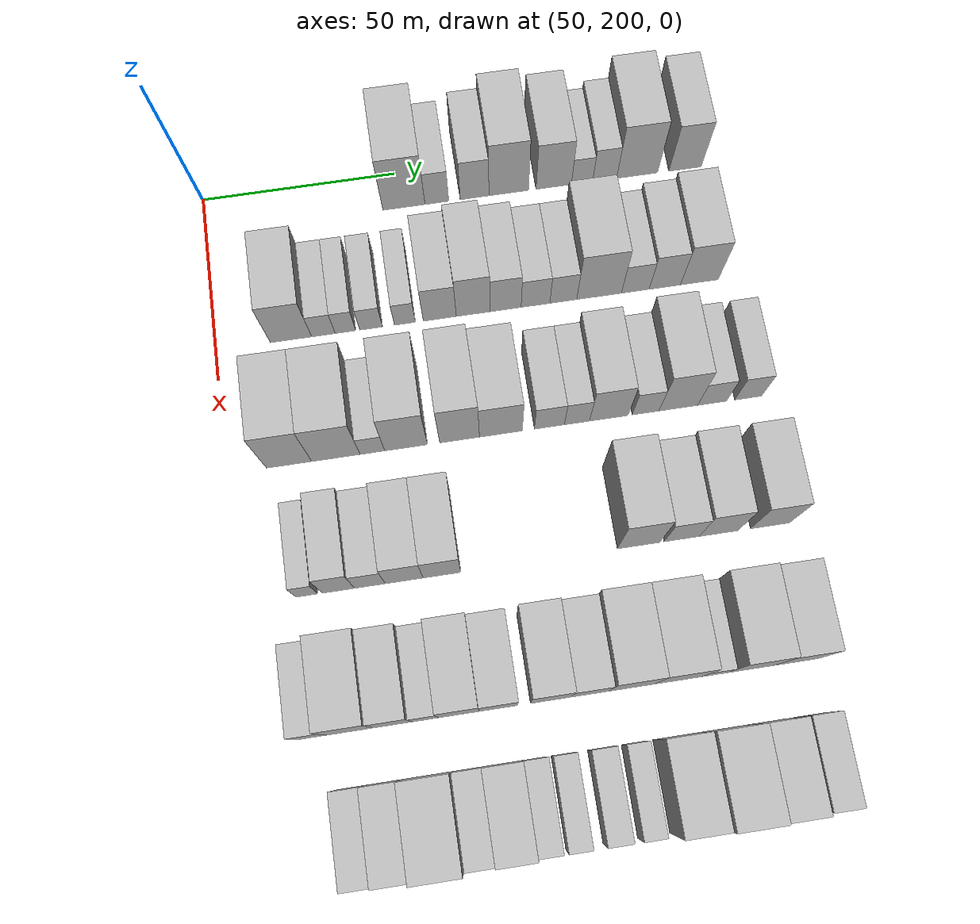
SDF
<sdf version="1.6">
 <world name="default">
  <model name="building_85">
   <static>1</static>
   <pose>50.0000 251.2242 0 0.000000 0.000000 0.000000</pose>
   <link name="link">
    <pose>0 0 12.00 0 0 0</pose>
    <collision name="collision"><geometry><box><size>20.0000 10.9344 24.0000</size></box></geometry></collision>
    <visual name="visual">
     <cast_shadows>0</cast_shadows>
     <geometry><box><size>20.0000 10.9344 24.0000</size></box></geometry>
     <material>
      <script>
       <uri>model://HANNAS_wall/materials/scripts</uri>
       <uri>model://HANNAS_wall/materials/textures</uri>
       <name>vrc/HANNAS_wall</name>
      </script>
     </material>
    </visual>
   </link>
  </model>
  <model name="building_86">
   <static>1</static>
   <pose>50.0000 259.7882 0 0.000000 0.000000 0.000000</pose>
   <link name="link">
    <pose>0 0 7.50 0 0 0</pose>
    <collision name="collision"><geometry><box><size>20.0000 6.1938 15.0000</size></box></geometry></collision>
    <visual name="visual">
     <cast_shadows>0</cast_shadows>
     <geometry><box><size>20.0000 6.1938 15.0000</size></box></geometry>
     <material>
      <script>
       <uri>model://HANNAS_wall/materials/scripts</uri>
       <uri>model://HANNAS_wall/materials/textures</uri>
       <name>vrc/HANNAS_wall</name>
      </script>
     </material>
    </visual>
   </link>
  </model>
  <model name="building_87">
   <static>1</static>
   <pose>50.0000 269.6459 0 0.000000 0.000000 0.000000</pose>
   <link name="link">
    <pose>0 0 9.00 0 0 0</pose>
    <collision name="collision"><geometry><box><size>20.0000 7.5215 18.0000</size></box></geometry></collision>
    <visual name="visual">
     <cast_shadows>0</cast_shadows>
     <geometry><box><size>20.0000 7.5215 18.0000</size></box></geometry>
     <material>
      <script>
       <uri>model://HANNAS_wall/materials/scripts</uri>
       <uri>model://HANNAS_wall/materials/textures</uri>
       <name>vrc/HANNAS_wall</name>
      </script>
     </material>
    </visual>
   </link>
  </model>
  <model name="building_88">
   <static>1</static>
   <pose>50.0000 278.5712 0 0.000000 0.000000 0.000000</pose>
   <link name="link">
    <pose>0 0 12.00 0 0 0</pose>
    <collision name="collision"><geometry><box><size>20.0000 10.3290 24.0000</size></box></geometry></collision>
    <visual name="visual">
     <cast_shadows>0</cast_shadows>
     <geometry><box><size>20.0000 10.3290 24.0000</size></box></geometry>
     <material>
      <script>
       <uri>model://HANNAS_wall/materials/scripts</uri>
       <uri>model://HANNAS_wall/materials/textures</uri>
       <name>vrc/HANNAS_wall</name>
      </script>
     </material>
    </visual>
   </link>
  </model>
  <model name="building_89">
   <static>1</static>
   <pose>50.0000 290.3845 0 0.000000 0.000000 0.000000</pose>
   <link name="link">
    <pose>0 0 10.50 0 0 0</pose>
    <collision name="collision"><geometry><box><size>20.0000 9.2975 21.0000</size></box></geometry></collision>
    <visual name="visual">
     <cast_shadows>0</cast_shadows>
     <geometry><box><size>20.0000 9.2975 21.0000</size></box></geometry>
     <material>
      <script>
       <uri>model://HANNAS_wall/materials/scripts</uri>
       <uri>model://HANNAS_wall/materials/textures</uri>
       <name>vrc/HANNAS_wall</name>
      </script>
     </material>
    </visual>
   </link>
  </model>
  <model name="building_90">
   <static>1</static>
   <pose>50.0000 297.8246 0 0.000000 0.000000 0.000000</pose>
   <link name="link">
    <pose>0 0 6.00 0 0 0</pose>
    <collision name="collision"><geometry><box><size>20.0000 5.5828 12.0000</size></box></geometry></collision>
    <visual name="visual">
     <cast_shadows>0</cast_shadows>
     <geometry><box><size>20.0000 5.5828 12.0000</size></box></geometry>
     <material>
      <script>
       <uri>model://HANNAS_wall/materials/scripts</uri>
       <uri>model://HANNAS_wall/materials/textures</uri>
       <name>vrc/HANNAS_wall</name>
      </script>
     </material>
    </visual>
   </link>
  </model>
  <model name="building_91">
   <static>1</static>
   <pose>50.0000 303.7821 0 0.000000 0.000000 0.000000</pose>
   <link name="link">
    <pose>0 0 7.50 0 0 0</pose>
    <collision name="collision"><geometry><box><size>20.0000 6.3321 15.0000</size></box></geometry></collision>
    <visual name="visual">
     <cast_shadows>0</cast_shadows>
     <geometry><box><size>20.0000 6.3321 15.0000</size></box></geometry>
     <material>
      <script>
       <uri>model://HANNAS_wall/materials/scripts</uri>
       <uri>model://HANNAS_wall/materials/textures</uri>
       <name>vrc/HANNAS_wall</name>
      </script>
     </material>
    </visual>
   </link>
  </model>
  <model name="building_92">
   <static>1</static>
   <pose>50.0000 312.3733 0 0.000000 0.000000 0.000000</pose>
   <link name="link">
    <pose>0 0 12.00 0 0 0</pose>
    <collision name="collision"><geometry><box><size>20.0000 10.8503 24.0000</size></box></geometry></collision>
    <visual name="visual">
     <cast_shadows>0</cast_shadows>
     <geometry><box><size>20.0000 10.8503 24.0000</size></box></geometry>
     <material>
      <script>
       <uri>model://HANNAS_wall/materials/scripts</uri>
       <uri>model://HANNAS_wall/materials/textures</uri>
       <name>vrc/HANNAS_wall</name>
      </script>
     </material>
    </visual>
   </link>
  </model>
  <model name="building_93">
   <static>1</static>
   <pose>50.0000 325.0896 0 0.000000 0.000000 0.000000</pose>
   <link name="link">
    <pose>0 0 10.50 0 0 0</pose>
    <collision name="collision"><geometry><box><size>20.0000 8.5824 21.0000</size></box></geometry></collision>
    <visual name="visual">
     <cast_shadows>0</cast_shadows>
     <geometry><box><size>20.0000 8.5824 21.0000</size></box></geometry>
     <material>
      <script>
       <uri>model://HANNAS_wall/materials/scripts</uri>
       <uri>model://HANNAS_wall/materials/textures</uri>
       <name>vrc/HANNAS_wall</name>
      </script>
     </material>
    </visual>
   </link>
  </model>
  <model name="building_201">
   <static>1</static>
   <pose>82.0000 218.8173 0 0.000000 0.000000 0.000000</pose>
   <link name="link">
    <pose>0 0 10.50 0 0 0</pose>
    <collision name="collision"><geometry><box><size>20.0000 10.3179 21.0000</size></box></geometry></collision>
    <visual name="visual">
     <cast_shadows>0</cast_shadows>
     <geometry><box><size>20.0000 10.3179 21.0000</size></box></geometry>
     <material>
      <script>
       <uri>model://HANNAS_wall/materials/scripts</uri>
       <uri>model://HANNAS_wall/materials/textures</uri>
       <name>vrc/HANNAS_wall</name>
      </script>
     </material>
    </visual>
   </link>
  </model>
  <model name="building_202">
   <static>1</static>
   <pose>82.0000 226.9212 0 0.000000 0.000000 0.000000</pose>
   <link name="link">
    <pose>0 0 6.00 0 0 0</pose>
    <collision name="collision"><geometry><box><size>20.0000 5.8899 12.0000</size></box></geometry></collision>
    <visual name="visual">
     <cast_shadows>0</cast_shadows>
     <geometry><box><size>20.0000 5.8899 12.0000</size></box></geometry>
     <material>
      <script>
       <uri>model://HANNAS_wall/materials/scripts</uri>
       <uri>model://HANNAS_wall/materials/textures</uri>
       <name>vrc/HANNAS_wall</name>
      </script>
     </material>
    </visual>
   </link>
  </model>
  <model name="building_203">
   <static>1</static>
   <pose>82.0000 232.4464 0 0.000000 0.000000 0.000000</pose>
   <link name="link">
    <pose>0 0 6.00 0 0 0</pose>
    <collision name="collision"><geometry><box><size>20.0000 5.1606 12.0000</size></box></geometry></collision>
    <visual name="visual">
     <cast_shadows>0</cast_shadows>
     <geometry><box><size>20.0000 5.1606 12.0000</size></box></geometry>
     <material>
      <script>
       <uri>model://HANNAS_wall/materials/scripts</uri>
       <uri>model://HANNAS_wall/materials/textures</uri>
       <name>vrc/HANNAS_wall</name>
      </script>
     </material>
    </visual>
   </link>
  </model>
  <model name="building_204">
   <static>1</static>
   <pose>82.0000 238.8896 0 0.000000 0.000000 0.000000</pose>
   <link name="link">
    <pose>0 0 6.00 0 0 0</pose>
    <collision name="collision"><geometry><box><size>20.0000 5.7256 12.0000</size></box></geometry></collision>
    <visual name="visual">
     <cast_shadows>0</cast_shadows>
     <geometry><box><size>20.0000 5.7256 12.0000</size></box></geometry>
     <material>
      <script>
       <uri>model://HANNAS_wall/materials/scripts</uri>
       <uri>model://HANNAS_wall/materials/textures</uri>
       <name>vrc/HANNAS_wall</name>
      </script>
     </material>
    </visual>
   </link>
  </model>
  <model name="building_205">
   <static>1</static>
   <pose>82.0000 247.3961 0 0.000000 0.000000 0.000000</pose>
   <link name="link">
    <pose>0 0 6.00 0 0 0</pose>
    <collision name="collision"><geometry><box><size>20.0000 5.2874 12.0000</size></box></geometry></collision>
    <visual name="visual">
     <cast_shadows>0</cast_shadows>
     <geometry><box><size>20.0000 5.2874 12.0000</size></box></geometry>
     <material>
      <script>
       <uri>model://HANNAS_wall/materials/scripts</uri>
       <uri>model://HANNAS_wall/materials/textures</uri>
       <name>vrc/HANNAS_wall</name>
      </script>
     </material>
    </visual>
   </link>
  </model>
  <model name="building_206">
   <static>1</static>
   <pose>82.0000 256.2009 0 0.000000 0.000000 0.000000</pose>
   <link name="link">
    <pose>0 0 9.00 0 0 0</pose>
    <collision name="collision"><geometry><box><size>20.0000 8.3221 18.0000</size></box></geometry></collision>
    <visual name="visual">
     <cast_shadows>0</cast_shadows>
     <geometry><box><size>20.0000 8.3221 18.0000</size></box></geometry>
     <material>
      <script>
       <uri>model://HANNAS_wall/materials/scripts</uri>
       <uri>model://HANNAS_wall/materials/textures</uri>
       <name>vrc/HANNAS_wall</name>
      </script>
     </material>
    </visual>
   </link>
  </model>
  <model name="building_207">
   <static>1</static>
   <pose>82.0000 264.6581 0 0.000000 0.000000 0.000000</pose>
   <link name="link">
    <pose>0 0 10.50 0 0 0</pose>
    <collision name="collision"><geometry><box><size>20.0000 8.5924 21.0000</size></box></geometry></collision>
    <visual name="visual">
     <cast_shadows>0</cast_shadows>
     <geometry><box><size>20.0000 8.5924 21.0000</size></box></geometry>
     <material>
      <script>
       <uri>model://HANNAS_wall/materials/scripts</uri>
       <uri>model://HANNAS_wall/materials/textures</uri>
       <name>vrc/HANNAS_wall</name>
      </script>
     </material>
    </visual>
   </link>
  </model>
  <model name="building_208">
   <static>1</static>
   <pose>82.0000 272.8703 0 0.000000 0.000000 0.000000</pose>
   <link name="link">
    <pose>0 0 9.00 0 0 0</pose>
    <collision name="collision"><geometry><box><size>20.0000 7.8319 18.0000</size></box></geometry></collision>
    <visual name="visual">
     <cast_shadows>0</cast_shadows>
     <geometry><box><size>20.0000 7.8319 18.0000</size></box></geometry>
     <material>
      <script>
       <uri>model://HANNAS_wall/materials/scripts</uri>
       <uri>model://HANNAS_wall/materials/textures</uri>
       <name>vrc/HANNAS_wall</name>
      </script>
     </material>
    </visual>
   </link>
  </model>
  <model name="building_209">
   <static>1</static>
   <pose>82.0000 280.4461 0 0.000000 0.000000 0.000000</pose>
   <link name="link">
    <pose>0 0 7.50 0 0 0</pose>
    <collision name="collision"><geometry><box><size>20.0000 7.3196 15.0000</size></box></geometry></collision>
    <visual name="visual">
     <cast_shadows>0</cast_shadows>
     <geometry><box><size>20.0000 7.3196 15.0000</size></box></geometry>
     <material>
      <script>
       <uri>model://HANNAS_wall/materials/scripts</uri>
       <uri>model://HANNAS_wall/materials/textures</uri>
       <name>vrc/HANNAS_wall</name>
      </script>
     </material>
    </visual>
   </link>
  </model>
  <model name="building_210">
   <static>1</static>
   <pose>82.0000 287.5278 0 0.000000 0.000000 0.000000</pose>
   <link name="link">
    <pose>0 0 7.50 0 0 0</pose>
    <collision name="collision"><geometry><box><size>20.0000 6.8439 15.0000</size></box></geometry></collision>
    <visual name="visual">
     <cast_shadows>0</cast_shadows>
     <geometry><box><size>20.0000 6.8439 15.0000</size></box></geometry>
     <material>
      <script>
       <uri>model://HANNAS_wall/materials/scripts</uri>
       <uri>model://HANNAS_wall/materials/textures</uri>
       <name>vrc/HANNAS_wall</name>
      </script>
     </material>
    </visual>
   </link>
  </model>
  <model name="building_211">
   <static>1</static>
   <pose>82.0000 296.6586 0 0.000000 0.000000 0.000000</pose>
   <link name="link">
    <pose>0 0 12.00 0 0 0</pose>
    <collision name="collision"><geometry><box><size>20.0000 11.4178 24.0000</size></box></geometry></collision>
    <visual name="visual">
     <cast_shadows>0</cast_shadows>
     <geometry><box><size>20.0000 11.4178 24.0000</size></box></geometry>
     <material>
      <script>
       <uri>model://HANNAS_wall/materials/scripts</uri>
       <uri>model://HANNAS_wall/materials/textures</uri>
       <name>vrc/HANNAS_wall</name>
      </script>
     </material>
    </visual>
   </link>
  </model>
  <model name="building_212">
   <static>1</static>
   <pose>82.0000 305.9149 0 0.000000 0.000000 0.000000</pose>
   <link name="link">
    <pose>0 0 7.50 0 0 0</pose>
    <collision name="collision"><geometry><box><size>20.0000 7.0948 15.0000</size></box></geometry></collision>
    <visual name="visual">
     <cast_shadows>0</cast_shadows>
     <geometry><box><size>20.0000 7.0948 15.0000</size></box></geometry>
     <material>
      <script>
       <uri>model://HANNAS_wall/materials/scripts</uri>
       <uri>model://HANNAS_wall/materials/textures</uri>
       <name>vrc/HANNAS_wall</name>
      </script>
     </material>
    </visual>
   </link>
  </model>
  <model name="building_213">
   <static>1</static>
   <pose>82.0000 313.4951 0 0.000000 0.000000 0.000000</pose>
   <link name="link">
    <pose>0 0 9.00 0 0 0</pose>
    <collision name="collision"><geometry><box><size>20.0000 8.0655 18.0000</size></box></geometry></collision>
    <visual name="visual">
     <cast_shadows>0</cast_shadows>
     <geometry><box><size>20.0000 8.0655 18.0000</size></box></geometry>
     <material>
      <script>
       <uri>model://HANNAS_wall/materials/scripts</uri>
       <uri>model://HANNAS_wall/materials/textures</uri>
       <name>vrc/HANNAS_wall</name>
      </script>
     </material>
    </visual>
   </link>
  </model>
  <model name="building_214">
   <static>1</static>
   <pose>82.0000 322.3911 0 0.000000 0.000000 0.000000</pose>
   <link name="link">
    <pose>0 0 10.50 0 0 0</pose>
    <collision name="collision"><geometry><box><size>20.0000 9.7266 21.0000</size></box></geometry></collision>
    <visual name="visual">
     <cast_shadows>0</cast_shadows>
     <geometry><box><size>20.0000 9.7266 21.0000</size></box></geometry>
     <material>
      <script>
       <uri>model://HANNAS_wall/materials/scripts</uri>
       <uri>model://HANNAS_wall/materials/textures</uri>
       <name>vrc/HANNAS_wall</name>
      </script>
     </material>
    </visual>
   </link>
  </model>
  <model name="building_317">
   <static>1</static>
   <pose>114.0000 215.2118 0 0.000000 0.000000 0.000000</pose>
   <link name="link">
    <pose>0 0 12.00 0 0 0</pose>
    <collision name="collision"><geometry><box><size>20.0000 10.9580 24.0000</size></box></geometry></collision>
    <visual name="visual">
     <cast_shadows>0</cast_shadows>
     <geometry><box><size>20.0000 10.9580 24.0000</size></box></geometry>
     <material>
      <script>
       <uri>model://HANNAS_wall/materials/scripts</uri>
       <uri>model://HANNAS_wall/materials/textures</uri>
       <name>vrc/HANNAS_wall</name>
      </script>
     </material>
    </visual>
   </link>
  </model>
  <model name="building_318">
   <static>1</static>
   <pose>114.0000 226.5452 0 0.000000 0.000000 0.000000</pose>
   <link name="link">
    <pose>0 0 12.00 0 0 0</pose>
    <collision name="collision"><geometry><box><size>20.0000 11.7088 24.0000</size></box></geometry></collision>
    <visual name="visual">
     <cast_shadows>0</cast_shadows>
     <geometry><box><size>20.0000 11.7088 24.0000</size></box></geometry>
     <material>
      <script>
       <uri>model://HANNAS_wall/materials/scripts</uri>
       <uri>model://HANNAS_wall/materials/textures</uri>
       <name>vrc/HANNAS_wall</name>
      </script>
     </material>
    </visual>
   </link>
  </model>
  <model name="building_319">
   <static>1</static>
   <pose>114.0000 235.3949 0 0.000000 0.000000 0.000000</pose>
   <link name="link">
    <pose>0 0 6.00 0 0 0</pose>
    <collision name="collision"><geometry><box><size>20.0000 5.9906 12.0000</size></box></geometry></collision>
    <visual name="visual">
     <cast_shadows>0</cast_shadows>
     <geometry><box><size>20.0000 5.9906 12.0000</size></box></geometry>
     <material>
      <script>
       <uri>model://HANNAS_wall/materials/scripts</uri>
       <uri>model://HANNAS_wall/materials/textures</uri>
       <name>vrc/HANNAS_wall</name>
      </script>
     </material>
    </visual>
   </link>
  </model>
  <model name="building_320">
   <static>1</static>
   <pose>114.0000 243.6078 0 0.000000 0.000000 0.000000</pose>
   <link name="link">
    <pose>0 0 12.00 0 0 0</pose>
    <collision name="collision"><geometry><box><size>20.0000 10.4353 24.0000</size></box></geometry></collision>
    <visual name="visual">
     <cast_shadows>0</cast_shadows>
     <geometry><box><size>20.0000 10.4353 24.0000</size></box></geometry>
     <material>
      <script>
       <uri>model://HANNAS_wall/materials/scripts</uri>
       <uri>model://HANNAS_wall/materials/textures</uri>
       <name>vrc/HANNAS_wall</name>
      </script>
     </material>
    </visual>
   </link>
  </model>
  <model name="building_321">
   <static>1</static>
   <pose>114.0000 256.6834 0 0.000000 0.000000 0.000000</pose>
   <link name="link">
    <pose>0 0 12.00 0 0 0</pose>
    <collision name="collision"><geometry><box><size>20.0000 9.7159 24.0000</size></box></geometry></collision>
    <visual name="visual">
     <cast_shadows>0</cast_shadows>
     <geometry><box><size>20.0000 9.7159 24.0000</size></box></geometry>
     <material>
      <script>
       <uri>model://HANNAS_wall/materials/scripts</uri>
       <uri>model://HANNAS_wall/materials/textures</uri>
       <name>vrc/HANNAS_wall</name>
      </script>
     </material>
    </visual>
   </link>
  </model>
  <model name="building_322">
   <static>1</static>
   <pose>114.0000 266.7874 0 0.000000 0.000000 0.000000</pose>
   <link name="link">
    <pose>0 0 10.50 0 0 0</pose>
    <collision name="collision"><geometry><box><size>20.0000 10.4921 21.0000</size></box></geometry></collision>
    <visual name="visual">
     <cast_shadows>0</cast_shadows>
     <geometry><box><size>20.0000 10.4921 21.0000</size></box></geometry>
     <material>
      <script>
       <uri>model://HANNAS_wall/materials/scripts</uri>
       <uri>model://HANNAS_wall/materials/textures</uri>
       <name>vrc/HANNAS_wall</name>
      </script>
     </material>
    </visual>
   </link>
  </model>
  <model name="building_323">
   <static>1</static>
   <pose>114.0000 278.7101 0 0.000000 0.000000 0.000000</pose>
   <link name="link">
    <pose>0 0 7.50 0 0 0</pose>
    <collision name="collision"><geometry><box><size>20.0000 7.3532 15.0000</size></box></geometry></collision>
    <visual name="visual">
     <cast_shadows>0</cast_shadows>
     <geometry><box><size>20.0000 7.3532 15.0000</size></box></geometry>
     <material>
      <script>
       <uri>model://HANNAS_wall/materials/scripts</uri>
       <uri>model://HANNAS_wall/materials/textures</uri>
       <name>vrc/HANNAS_wall</name>
      </script>
     </material>
    </visual>
   </link>
  </model>
  <model name="building_324">
   <static>1</static>
   <pose>114.0000 285.4901 0 0.000000 0.000000 0.000000</pose>
   <link name="link">
    <pose>0 0 7.50 0 0 0</pose>
    <collision name="collision"><geometry><box><size>20.0000 6.2069 15.0000</size></box></geometry></collision>
    <visual name="visual">
     <cast_shadows>0</cast_shadows>
     <geometry><box><size>20.0000 6.2069 15.0000</size></box></geometry>
     <material>
      <script>
       <uri>model://HANNAS_wall/materials/scripts</uri>
       <uri>model://HANNAS_wall/materials/textures</uri>
       <name>vrc/HANNAS_wall</name>
      </script>
     </material>
    </visual>
   </link>
  </model>
  <model name="building_325">
   <static>1</static>
   <pose>114.0000 293.3940 0 0.000000 0.000000 0.000000</pose>
   <link name="link">
    <pose>0 0 10.50 0 0 0</pose>
    <collision name="collision"><geometry><box><size>20.0000 9.6009 21.0000</size></box></geometry></collision>
    <visual name="visual">
     <cast_shadows>0</cast_shadows>
     <geometry><box><size>20.0000 9.6009 21.0000</size></box></geometry>
     <material>
      <script>
       <uri>model://HANNAS_wall/materials/scripts</uri>
       <uri>model://HANNAS_wall/materials/textures</uri>
       <name>vrc/HANNAS_wall</name>
      </script>
     </material>
    </visual>
   </link>
  </model>
  <model name="building_326">
   <static>1</static>
   <pose>114.0000 302.5099 0 0.000000 0.000000 0.000000</pose>
   <link name="link">
    <pose>0 0 7.50 0 0 0</pose>
    <collision name="collision"><geometry><box><size>20.0000 6.6310 15.0000</size></box></geometry></collision>
    <visual name="visual">
     <cast_shadows>0</cast_shadows>
     <geometry><box><size>20.0000 6.6310 15.0000</size></box></geometry>
     <material>
      <script>
       <uri>model://HANNAS_wall/materials/scripts</uri>
       <uri>model://HANNAS_wall/materials/textures</uri>
       <name>vrc/HANNAS_wall</name>
      </script>
     </material>
    </visual>
   </link>
  </model>
  <model name="building_327">
   <static>1</static>
   <pose>114.0000 310.6575 0 0.000000 0.000000 0.000000</pose>
   <link name="link">
    <pose>0 0 12.00 0 0 0</pose>
    <collision name="collision"><geometry><box><size>20.0000 9.6642 24.0000</size></box></geometry></collision>
    <visual name="visual">
     <cast_shadows>0</cast_shadows>
     <geometry><box><size>20.0000 9.6642 24.0000</size></box></geometry>
     <material>
      <script>
       <uri>model://HANNAS_wall/materials/scripts</uri>
       <uri>model://HANNAS_wall/materials/textures</uri>
       <name>vrc/HANNAS_wall</name>
      </script>
     </material>
    </visual>
   </link>
  </model>
  <model name="building_328">
   <static>1</static>
   <pose>114.0000 319.1140 0 0.000000 0.000000 0.000000</pose>
   <link name="link">
    <pose>0 0 7.50 0 0 0</pose>
    <collision name="collision"><geometry><box><size>20.0000 7.2488 15.0000</size></box></geometry></collision>
    <visual name="visual">
     <cast_shadows>0</cast_shadows>
     <geometry><box><size>20.0000 7.2488 15.0000</size></box></geometry>
     <material>
      <script>
       <uri>model://HANNAS_wall/materials/scripts</uri>
       <uri>model://HANNAS_wall/materials/textures</uri>
       <name>vrc/HANNAS_wall</name>
      </script>
     </material>
    </visual>
   </link>
  </model>
  <model name="building_329">
   <static>1</static>
   <pose>114.0000 328.1072 0 0.000000 0.000000 0.000000</pose>
   <link name="link">
    <pose>0 0 7.50 0 0 0</pose>
    <collision name="collision"><geometry><box><size>20.0000 6.7378 15.0000</size></box></geometry></collision>
    <visual name="visual">
     <cast_shadows>0</cast_shadows>
     <geometry><box><size>20.0000 6.7378 15.0000</size></box></geometry>
     <material>
      <script>
       <uri>model://HANNAS_wall/materials/scripts</uri>
       <uri>model://HANNAS_wall/materials/textures</uri>
       <name>vrc/HANNAS_wall</name>
      </script>
     </material>
    </visual>
   </link>
  </model>
  <model name="building_441">
   <static>1</static>
   <pose>146.0000 216.2451 0 0.000000 0.000000 0.000000</pose>
   <link name="link">
    <pose>0 0 6.00 0 0 0</pose>
    <collision name="collision"><geometry><box><size>20.0000 5.1299 12.0000</size></box></geometry></collision>
    <visual name="visual">
     <cast_shadows>0</cast_shadows>
     <geometry><box><size>20.0000 5.1299 12.0000</size></box></geometry>
     <material>
      <script>
       <uri>model://HANNAS_wall/materials/scripts</uri>
       <uri>model://HANNAS_wall/materials/textures</uri>
       <name>vrc/HANNAS_wall</name>
      </script>
     </material>
    </visual>
   </link>
  </model>
  <model name="building_442">
   <static>1</static>
   <pose>146.0000 223.6132 0 0.000000 0.000000 0.000000</pose>
   <link name="link">
    <pose>0 0 9.00 0 0 0</pose>
    <collision name="collision"><geometry><box><size>20.0000 7.6064 18.0000</size></box></geometry></collision>
    <visual name="visual">
     <cast_shadows>0</cast_shadows>
     <geometry><box><size>20.0000 7.6064 18.0000</size></box></geometry>
     <material>
      <script>
       <uri>model://HANNAS_wall/materials/scripts</uri>
       <uri>model://HANNAS_wall/materials/textures</uri>
       <name>vrc/HANNAS_wall</name>
      </script>
     </material>
    </visual>
   </link>
  </model>
  <model name="building_443">
   <static>1</static>
   <pose>146.0000 231.0195 0 0.000000 0.000000 0.000000</pose>
   <link name="link">
    <pose>0 0 7.50 0 0 0</pose>
    <collision name="collision"><geometry><box><size>20.0000 7.2062 15.0000</size></box></geometry></collision>
    <visual name="visual">
     <cast_shadows>0</cast_shadows>
     <geometry><box><size>20.0000 7.2062 15.0000</size></box></geometry>
     <material>
      <script>
       <uri>model://HANNAS_wall/materials/scripts</uri>
       <uri>model://HANNAS_wall/materials/textures</uri>
       <name>vrc/HANNAS_wall</name>
      </script>
     </material>
    </visual>
   </link>
  </model>
  <model name="building_444">
   <static>1</static>
   <pose>146.0000 239.0750 0 0.000000 0.000000 0.000000</pose>
   <link name="link">
    <pose>0 0 9.00 0 0 0</pose>
    <collision name="collision"><geometry><box><size>20.0000 8.9047 18.0000</size></box></geometry></collision>
    <visual name="visual">
     <cast_shadows>0</cast_shadows>
     <geometry><box><size>20.0000 8.9047 18.0000</size></box></geometry>
     <material>
      <script>
       <uri>model://HANNAS_wall/materials/scripts</uri>
       <uri>model://HANNAS_wall/materials/textures</uri>
       <name>vrc/HANNAS_wall</name>
      </script>
     </material>
    </visual>
   </link>
  </model>
  <model name="building_445">
   <static>1</static>
   <pose>146.0000 247.9908 0 0.000000 0.000000 0.000000</pose>
   <link name="link">
    <pose>0 0 9.00 0 0 0</pose>
    <collision name="collision"><geometry><box><size>20.0000 8.9270 18.0000</size></box></geometry></collision>
    <visual name="visual">
     <cast_shadows>0</cast_shadows>
     <geometry><box><size>20.0000 8.9270 18.0000</size></box></geometry>
     <material>
      <script>
       <uri>model://HANNAS_wall/materials/scripts</uri>
       <uri>model://HANNAS_wall/materials/textures</uri>
       <name>vrc/HANNAS_wall</name>
      </script>
     </material>
    </visual>
   </link>
  </model>
  <model name="building_446">
   <static>1</static>
   <pose>146.0000 294.8011 0 0.000000 0.000000 0.000000</pose>
   <link name="link">
    <pose>0 0 12.00 0 0 0</pose>
    <collision name="collision"><geometry><box><size>20.0000 10.2313 24.0000</size></box></geometry></collision>
    <visual name="visual">
     <cast_shadows>0</cast_shadows>
     <geometry><box><size>20.0000 10.2313 24.0000</size></box></geometry>
     <material>
      <script>
       <uri>model://HANNAS_wall/materials/scripts</uri>
       <uri>model://HANNAS_wall/materials/textures</uri>
       <name>vrc/HANNAS_wall</name>
      </script>
     </material>
    </visual>
   </link>
  </model>
  <model name="building_447">
   <static>1</static>
   <pose>146.0000 305.1382 0 0.000000 0.000000 0.000000</pose>
   <link name="link">
    <pose>0 0 9.00 0 0 0</pose>
    <collision name="collision"><geometry><box><size>20.0000 8.4429 18.0000</size></box></geometry></collision>
    <visual name="visual">
     <cast_shadows>0</cast_shadows>
     <geometry><box><size>20.0000 8.4429 18.0000</size></box></geometry>
     <material>
      <script>
       <uri>model://HANNAS_wall/materials/scripts</uri>
       <uri>model://HANNAS_wall/materials/textures</uri>
       <name>vrc/HANNAS_wall</name>
      </script>
     </material>
    </visual>
   </link>
  </model>
  <model name="building_448">
   <static>1</static>
   <pose>146.0000 314.0606 0 0.000000 0.000000 0.000000</pose>
   <link name="link">
    <pose>0 0 10.50 0 0 0</pose>
    <collision name="collision"><geometry><box><size>20.0000 9.4018 21.0000</size></box></geometry></collision>
    <visual name="visual">
     <cast_shadows>0</cast_shadows>
     <geometry><box><size>20.0000 9.4018 21.0000</size></box></geometry>
     <material>
      <script>
       <uri>model://HANNAS_wall/materials/scripts</uri>
       <uri>model://HANNAS_wall/materials/textures</uri>
       <name>vrc/HANNAS_wall</name>
      </script>
     </material>
    </visual>
   </link>
  </model>
  <model name="building_449">
   <static>1</static>
   <pose>146.0000 326.5149 0 0.000000 0.000000 0.000000</pose>
   <link name="link">
    <pose>0 0 10.50 0 0 0</pose>
    <collision name="collision"><geometry><box><size>20.0000 9.5068 21.0000</size></box></geometry></collision>
    <visual name="visual">
     <cast_shadows>0</cast_shadows>
     <geometry><box><size>20.0000 9.5068 21.0000</size></box></geometry>
     <material>
      <script>
       <uri>model://HANNAS_wall/materials/scripts</uri>
       <uri>model://HANNAS_wall/materials/textures</uri>
       <name>vrc/HANNAS_wall</name>
      </script>
     </material>
    </visual>
   </link>
  </model>
  <model name="building_552">
   <static>1</static>
   <pose>178.0000 214.0948 0 0.000000 0.000000 0.000000</pose>
   <link name="link">
    <pose>0 0 7.50 0 0 0</pose>
    <collision name="collision"><geometry><box><size>20.0000 6.9500 15.0000</size></box></geometry></collision>
    <visual name="visual">
     <cast_shadows>0</cast_shadows>
     <geometry><box><size>20.0000 6.9500 15.0000</size></box></geometry>
     <material>
      <script>
       <uri>model://HANNAS_wall/materials/scripts</uri>
       <uri>model://HANNAS_wall/materials/textures</uri>
       <name>vrc/HANNAS_wall</name>
      </script>
     </material>
    </visual>
   </link>
  </model>
  <model name="building_553">
   <static>1</static>
   <pose>178.0000 222.9026 0 0.000000 0.000000 0.000000</pose>
   <link name="link">
    <pose>0 0 12.00 0 0 0</pose>
    <collision name="collision"><geometry><box><size>20.0000 10.6656 24.0000</size></box></geometry></collision>
    <visual name="visual">
     <cast_shadows>0</cast_shadows>
     <geometry><box><size>20.0000 10.6656 24.0000</size></box></geometry>
     <material>
      <script>
       <uri>model://HANNAS_wall/materials/scripts</uri>
       <uri>model://HANNAS_wall/materials/textures</uri>
       <name>vrc/HANNAS_wall</name>
      </script>
     </material>
    </visual>
   </link>
  </model>
  <model name="building_554">
   <static>1</static>
   <pose>178.0000 232.5361 0 0.000000 0.000000 0.000000</pose>
   <link name="link">
    <pose>0 0 10.50 0 0 0</pose>
    <collision name="collision"><geometry><box><size>20.0000 8.6014 21.0000</size></box></geometry></collision>
    <visual name="visual">
     <cast_shadows>0</cast_shadows>
     <geometry><box><size>20.0000 8.6014 21.0000</size></box></geometry>
     <material>
      <script>
       <uri>model://HANNAS_wall/materials/scripts</uri>
       <uri>model://HANNAS_wall/materials/textures</uri>
       <name>vrc/HANNAS_wall</name>
      </script>
     </material>
    </visual>
   </link>
  </model>
  <model name="building_555">
   <static>1</static>
   <pose>178.0000 239.8468 0 0.000000 0.000000 0.000000</pose>
   <link name="link">
    <pose>0 0 7.50 0 0 0</pose>
    <collision name="collision"><geometry><box><size>20.0000 6.0202 15.0000</size></box></geometry></collision>
    <visual name="visual">
     <cast_shadows>0</cast_shadows>
     <geometry><box><size>20.0000 6.0202 15.0000</size></box></geometry>
     <material>
      <script>
       <uri>model://HANNAS_wall/materials/scripts</uri>
       <uri>model://HANNAS_wall/materials/textures</uri>
       <name>vrc/HANNAS_wall</name>
      </script>
     </material>
    </visual>
   </link>
  </model>
  <model name="building_556">
   <static>1</static>
   <pose>178.0000 247.5234 0 0.000000 0.000000 0.000000</pose>
   <link name="link">
    <pose>0 0 10.50 0 0 0</pose>
    <collision name="collision"><geometry><box><size>20.0000 9.3330 21.0000</size></box></geometry></collision>
    <visual name="visual">
     <cast_shadows>0</cast_shadows>
     <geometry><box><size>20.0000 9.3330 21.0000</size></box></geometry>
     <material>
      <script>
       <uri>model://HANNAS_wall/materials/scripts</uri>
       <uri>model://HANNAS_wall/materials/textures</uri>
       <name>vrc/HANNAS_wall</name>
      </script>
     </material>
    </visual>
   </link>
  </model>
  <model name="building_557">
   <static>1</static>
   <pose>178.0000 256.5157 0 0.000000 0.000000 0.000000</pose>
   <link name="link">
    <pose>0 0 9.00 0 0 0</pose>
    <collision name="collision"><geometry><box><size>20.0000 8.6517 18.0000</size></box></geometry></collision>
    <visual name="visual">
     <cast_shadows>0</cast_shadows>
     <geometry><box><size>20.0000 8.6517 18.0000</size></box></geometry>
     <material>
      <script>
       <uri>model://HANNAS_wall/materials/scripts</uri>
       <uri>model://HANNAS_wall/materials/textures</uri>
       <name>vrc/HANNAS_wall</name>
      </script>
     </material>
    </visual>
   </link>
  </model>
  <model name="building_558">
   <static>1</static>
   <pose>178.0000 268.4769 0 0.000000 0.000000 0.000000</pose>
   <link name="link">
    <pose>0 0 10.50 0 0 0</pose>
    <collision name="collision"><geometry><box><size>20.0000 9.2706 21.0000</size></box></geometry></collision>
    <visual name="visual">
     <cast_shadows>0</cast_shadows>
     <geometry><box><size>20.0000 9.2706 21.0000</size></box></geometry>
     <material>
      <script>
       <uri>model://HANNAS_wall/materials/scripts</uri>
       <uri>model://HANNAS_wall/materials/textures</uri>
       <name>vrc/HANNAS_wall</name>
      </script>
     </material>
    </visual>
   </link>
  </model>
  <model name="building_559">
   <static>1</static>
   <pose>178.0000 277.3852 0 0.000000 0.000000 0.000000</pose>
   <link name="link">
    <pose>0 0 9.00 0 0 0</pose>
    <collision name="collision"><geometry><box><size>20.0000 8.5460 18.0000</size></box></geometry></collision>
    <visual name="visual">
     <cast_shadows>0</cast_shadows>
     <geometry><box><size>20.0000 8.5460 18.0000</size></box></geometry>
     <material>
      <script>
       <uri>model://HANNAS_wall/materials/scripts</uri>
       <uri>model://HANNAS_wall/materials/textures</uri>
       <name>vrc/HANNAS_wall</name>
      </script>
     </material>
    </visual>
   </link>
  </model>
  <model name="building_560">
   <static>1</static>
   <pose>178.0000 287.0192 0 0.000000 0.000000 0.000000</pose>
   <link name="link">
    <pose>0 0 12.00 0 0 0</pose>
    <collision name="collision"><geometry><box><size>20.0000 10.7220 24.0000</size></box></geometry></collision>
    <visual name="visual">
     <cast_shadows>0</cast_shadows>
     <geometry><box><size>20.0000 10.7220 24.0000</size></box></geometry>
     <material>
      <script>
       <uri>model://HANNAS_wall/materials/scripts</uri>
       <uri>model://HANNAS_wall/materials/textures</uri>
       <name>vrc/HANNAS_wall</name>
      </script>
     </material>
    </visual>
   </link>
  </model>
  <model name="building_561">
   <static>1</static>
   <pose>178.0000 297.8777 0 0.000000 0.000000 0.000000</pose>
   <link name="link">
    <pose>0 0 12.00 0 0 0</pose>
    <collision name="collision"><geometry><box><size>20.0000 10.9950 24.0000</size></box></geometry></collision>
    <visual name="visual">
     <cast_shadows>0</cast_shadows>
     <geometry><box><size>20.0000 10.9950 24.0000</size></box></geometry>
     <material>
      <script>
       <uri>model://HANNAS_wall/materials/scripts</uri>
       <uri>model://HANNAS_wall/materials/textures</uri>
       <name>vrc/HANNAS_wall</name>
      </script>
     </material>
    </visual>
   </link>
  </model>
  <model name="building_562">
   <static>1</static>
   <pose>178.0000 306.3682 0 0.000000 0.000000 0.000000</pose>
   <link name="link">
    <pose>0 0 6.00 0 0 0</pose>
    <collision name="collision"><geometry><box><size>20.0000 5.9861 12.0000</size></box></geometry></collision>
    <visual name="visual">
     <cast_shadows>0</cast_shadows>
     <geometry><box><size>20.0000 5.9861 12.0000</size></box></geometry>
     <material>
      <script>
       <uri>model://HANNAS_wall/materials/scripts</uri>
       <uri>model://HANNAS_wall/materials/textures</uri>
       <name>vrc/HANNAS_wall</name>
      </script>
     </material>
    </visual>
   </link>
  </model>
  <model name="building_563">
   <static>1</static>
   <pose>178.0000 314.7826 0 0.000000 0.000000 0.000000</pose>
   <link name="link">
    <pose>0 0 12.00 0 0 0</pose>
    <collision name="collision"><geometry><box><size>20.0000 10.8426 24.0000</size></box></geometry></collision>
    <visual name="visual">
     <cast_shadows>0</cast_shadows>
     <geometry><box><size>20.0000 10.8426 24.0000</size></box></geometry>
     <material>
      <script>
       <uri>model://HANNAS_wall/materials/scripts</uri>
       <uri>model://HANNAS_wall/materials/textures</uri>
       <name>vrc/HANNAS_wall</name>
      </script>
     </material>
    </visual>
   </link>
  </model>
  <model name="building_564">
   <static>1</static>
   <pose>178.0000 325.3737 0 0.000000 0.000000 0.000000</pose>
   <link name="link">
    <pose>0 0 10.50 0 0 0</pose>
    <collision name="collision"><geometry><box><size>20.0000 10.3395 21.0000</size></box></geometry></collision>
    <visual name="visual">
     <cast_shadows>0</cast_shadows>
     <geometry><box><size>20.0000 10.3395 21.0000</size></box></geometry>
     <material>
      <script>
       <uri>model://HANNAS_wall/materials/scripts</uri>
       <uri>model://HANNAS_wall/materials/textures</uri>
       <name>vrc/HANNAS_wall</name>
      </script>
     </material>
    </visual>
   </link>
  </model>
  <model name="building_675">
   <static>1</static>
   <pose>210.0000 221.7780 0 0.000000 0.000000 0.000000</pose>
   <link name="link">
    <pose>0 0 7.50 0 0 0</pose>
    <collision name="collision"><geometry><box><size>20.0000 6.7213 15.0000</size></box></geometry></collision>
    <visual name="visual">
     <cast_shadows>0</cast_shadows>
     <geometry><box><size>20.0000 6.7213 15.0000</size></box></geometry>
     <material>
      <script>
       <uri>model://HANNAS_wall/materials/scripts</uri>
       <uri>model://HANNAS_wall/materials/textures</uri>
       <name>vrc/HANNAS_wall</name>
      </script>
     </material>
    </visual>
   </link>
  </model>
  <model name="building_676">
   <static>1</static>
   <pose>210.0000 229.2836 0 0.000000 0.000000 0.000000</pose>
   <link name="link">
    <pose>0 0 9.00 0 0 0</pose>
    <collision name="collision"><geometry><box><size>20.0000 8.2900 18.0000</size></box></geometry></collision>
    <visual name="visual">
     <cast_shadows>0</cast_shadows>
     <geometry><box><size>20.0000 8.2900 18.0000</size></box></geometry>
     <material>
      <script>
       <uri>model://HANNAS_wall/materials/scripts</uri>
       <uri>model://HANNAS_wall/materials/textures</uri>
       <name>vrc/HANNAS_wall</name>
      </script>
     </material>
    </visual>
   </link>
  </model>
  <model name="building_677">
   <static>1</static>
   <pose>210.0000 238.9704 0 0.000000 0.000000 0.000000</pose>
   <link name="link">
    <pose>0 0 12.00 0 0 0</pose>
    <collision name="collision"><geometry><box><size>20.0000 11.0836 24.0000</size></box></geometry></collision>
    <visual name="visual">
     <cast_shadows>0</cast_shadows>
     <geometry><box><size>20.0000 11.0836 24.0000</size></box></geometry>
     <material>
      <script>
       <uri>model://HANNAS_wall/materials/scripts</uri>
       <uri>model://HANNAS_wall/materials/textures</uri>
       <name>vrc/HANNAS_wall</name>
      </script>
     </material>
    </visual>
   </link>
  </model>
  <model name="building_678">
   <static>1</static>
   <pose>210.0000 247.7586 0 0.000000 0.000000 0.000000</pose>
   <link name="link">
    <pose>0 0 7.50 0 0 0</pose>
    <collision name="collision"><geometry><box><size>20.0000 6.4927 15.0000</size></box></geometry></collision>
    <visual name="visual">
     <cast_shadows>0</cast_shadows>
     <geometry><box><size>20.0000 6.4927 15.0000</size></box></geometry>
     <material>
      <script>
       <uri>model://HANNAS_wall/materials/scripts</uri>
       <uri>model://HANNAS_wall/materials/textures</uri>
       <name>vrc/HANNAS_wall</name>
      </script>
     </material>
    </visual>
   </link>
  </model>
  <model name="building_679">
   <static>1</static>
   <pose>210.0000 255.5043 0 0.000000 0.000000 0.000000</pose>
   <link name="link">
    <pose>0 0 9.00 0 0 0</pose>
    <collision name="collision"><geometry><box><size>20.0000 8.9987 18.0000</size></box></geometry></collision>
    <visual name="visual">
     <cast_shadows>0</cast_shadows>
     <geometry><box><size>20.0000 8.9987 18.0000</size></box></geometry>
     <material>
      <script>
       <uri>model://HANNAS_wall/materials/scripts</uri>
       <uri>model://HANNAS_wall/materials/textures</uri>
       <name>vrc/HANNAS_wall</name>
      </script>
     </material>
    </visual>
   </link>
  </model>
  <model name="building_680">
   <static>1</static>
   <pose>210.0000 262.8055 0 0.000000 0.000000 0.000000</pose>
   <link name="link">
    <pose>0 0 6.00 0 0 0</pose>
    <collision name="collision"><geometry><box><size>20.0000 5.6037 12.0000</size></box></geometry></collision>
    <visual name="visual">
     <cast_shadows>0</cast_shadows>
     <geometry><box><size>20.0000 5.6037 12.0000</size></box></geometry>
     <material>
      <script>
       <uri>model://HANNAS_wall/materials/scripts</uri>
       <uri>model://HANNAS_wall/materials/textures</uri>
       <name>vrc/HANNAS_wall</name>
      </script>
     </material>
    </visual>
   </link>
  </model>
  <model name="building_681">
   <static>1</static>
   <pose>210.0000 269.2476 0 0.000000 0.000000 0.000000</pose>
   <link name="link">
    <pose>0 0 6.00 0 0 0</pose>
    <collision name="collision"><geometry><box><size>20.0000 5.2805 12.0000</size></box></geometry></collision>
    <visual name="visual">
     <cast_shadows>0</cast_shadows>
     <geometry><box><size>20.0000 5.2805 12.0000</size></box></geometry>
     <material>
      <script>
       <uri>model://HANNAS_wall/materials/scripts</uri>
       <uri>model://HANNAS_wall/materials/textures</uri>
       <name>vrc/HANNAS_wall</name>
      </script>
     </material>
    </visual>
   </link>
  </model>
  <model name="building_682">
   <static>1</static>
   <pose>210.0000 277.7410 0 0.000000 0.000000 0.000000</pose>
   <link name="link">
    <pose>0 0 6.00 0 0 0</pose>
    <collision name="collision"><geometry><box><size>20.0000 5.7063 12.0000</size></box></geometry></collision>
    <visual name="visual">
     <cast_shadows>0</cast_shadows>
     <geometry><box><size>20.0000 5.7063 12.0000</size></box></geometry>
     <material>
      <script>
       <uri>model://HANNAS_wall/materials/scripts</uri>
       <uri>model://HANNAS_wall/materials/textures</uri>
       <name>vrc/HANNAS_wall</name>
      </script>
     </material>
    </visual>
   </link>
  </model>
  <model name="building_683">
   <static>1</static>
   <pose>210.0000 285.1842 0 0.000000 0.000000 0.000000</pose>
   <link name="link">
    <pose>0 0 6.00 0 0 0</pose>
    <collision name="collision"><geometry><box><size>20.0000 5.1802 12.0000</size></box></geometry></collision>
    <visual name="visual">
     <cast_shadows>0</cast_shadows>
     <geometry><box><size>20.0000 5.1802 12.0000</size></box></geometry>
     <material>
      <script>
       <uri>model://HANNAS_wall/materials/scripts</uri>
       <uri>model://HANNAS_wall/materials/textures</uri>
       <name>vrc/HANNAS_wall</name>
      </script>
     </material>
    </visual>
   </link>
  </model>
  <model name="building_684">
   <static>1</static>
   <pose>210.0000 294.8282 0 0.000000 0.000000 0.000000</pose>
   <link name="link">
    <pose>0 0 10.50 0 0 0</pose>
    <collision name="collision"><geometry><box><size>20.0000 10.1077 21.0000</size></box></geometry></collision>
    <visual name="visual">
     <cast_shadows>0</cast_shadows>
     <geometry><box><size>20.0000 10.1077 21.0000</size></box></geometry>
     <material>
      <script>
       <uri>model://HANNAS_wall/materials/scripts</uri>
       <uri>model://HANNAS_wall/materials/textures</uri>
       <name>vrc/HANNAS_wall</name>
      </script>
     </material>
    </visual>
   </link>
  </model>
  <model name="building_685">
   <static>1</static>
   <pose>210.0000 305.3589 0 0.000000 0.000000 0.000000</pose>
   <link name="link">
    <pose>0 0 12.00 0 0 0</pose>
    <collision name="collision"><geometry><box><size>20.0000 10.9537 24.0000</size></box></geometry></collision>
    <visual name="visual">
     <cast_shadows>0</cast_shadows>
     <geometry><box><size>20.0000 10.9537 24.0000</size></box></geometry>
     <material>
      <script>
       <uri>model://HANNAS_wall/materials/scripts</uri>
       <uri>model://HANNAS_wall/materials/textures</uri>
       <name>vrc/HANNAS_wall</name>
      </script>
     </material>
    </visual>
   </link>
  </model>
  <model name="building_686">
   <static>1</static>
   <pose>210.0000 315.5841 0 0.000000 0.000000 0.000000</pose>
   <link name="link">
    <pose>0 0 10.50 0 0 0</pose>
    <collision name="collision"><geometry><box><size>20.0000 9.4967 21.0000</size></box></geometry></collision>
    <visual name="visual">
     <cast_shadows>0</cast_shadows>
     <geometry><box><size>20.0000 9.4967 21.0000</size></box></geometry>
     <material>
      <script>
       <uri>model://HANNAS_wall/materials/scripts</uri>
       <uri>model://HANNAS_wall/materials/textures</uri>
       <name>vrc/HANNAS_wall</name>
      </script>
     </material>
    </visual>
   </link>
  </model>
  <model name="building_687">
   <static>1</static>
   <pose>210.0000 325.8022 0 0.000000 0.000000 0.000000</pose>
   <link name="link">
    <pose>0 0 7.50 0 0 0</pose>
    <collision name="collision"><geometry><box><size>20.0000 6.9396 15.0000</size></box></geometry></collision>
    <visual name="visual">
     <cast_shadows>0</cast_shadows>
     <geometry><box><size>20.0000 6.9396 15.0000</size></box></geometry>
     <material>
      <script>
       <uri>model://HANNAS_wall/materials/scripts</uri>
       <uri>model://HANNAS_wall/materials/textures</uri>
       <name>vrc/HANNAS_wall</name>
      </script>
     </material>
    </visual>
   </link>
  </model>
 </world>
</sdf>
